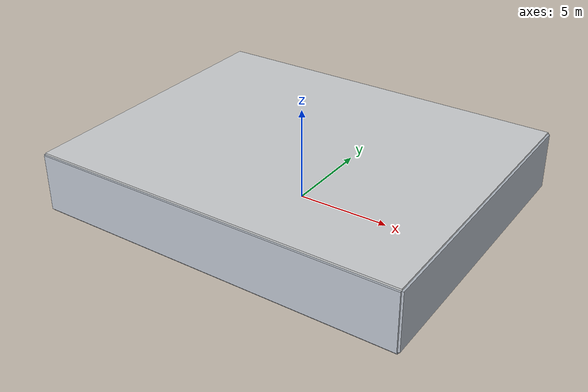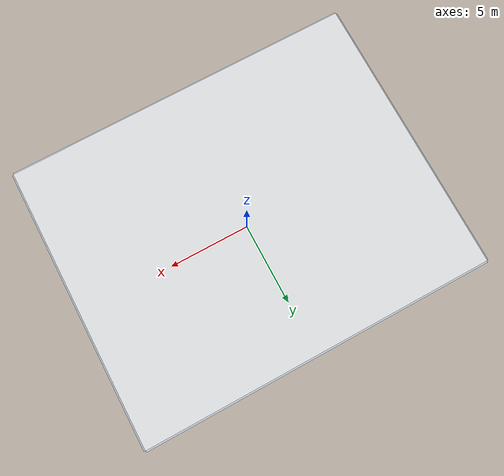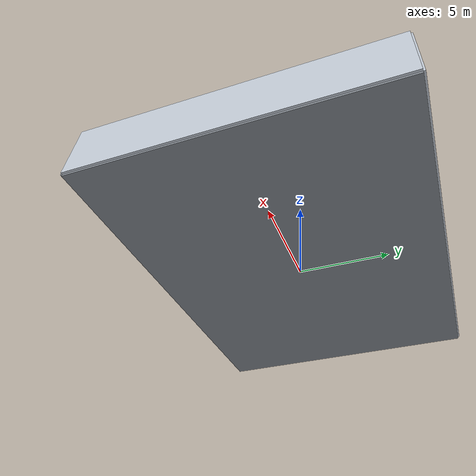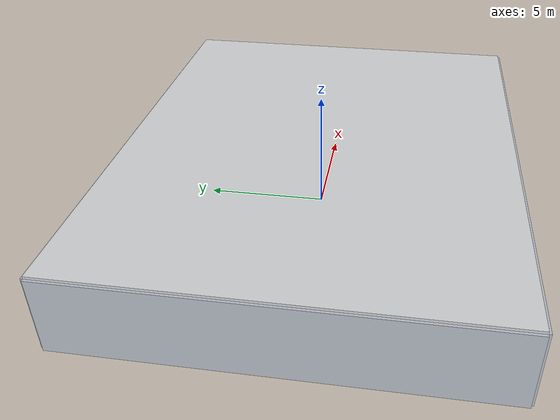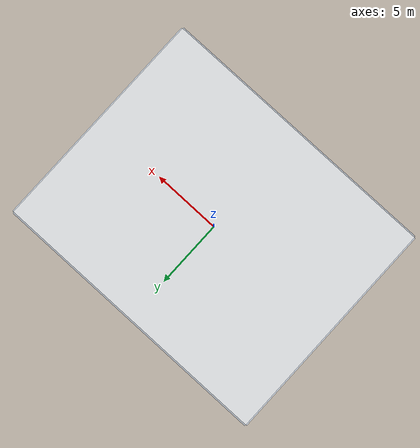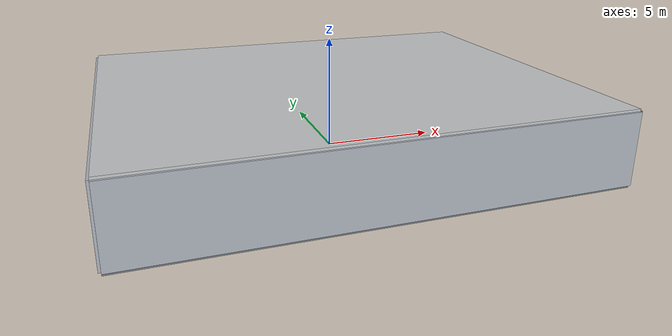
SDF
<?xml version="1.0"?>
<sdf version="1.10">
  <model name="xq_p5_replay_shell">
    <static>true</static>
    <link name="xq_shell_link">
      <visual name="xq_floor_visual">
        <pose>0 0 -0.06 0 0 0</pose>
        <geometry><box><size>20 16 0.12</size></box></geometry>
        <material><ambient>0.38 0.40 0.43 1</ambient><diffuse>0.48 0.50 0.53 1</diffuse></material>
      </visual>
      <visual name="xq_wall_west_visual">
        <pose>-10 0 1.55 0 0 0</pose>
        <geometry><box><size>0.20 16 3.10</size></box></geometry>
        <material><ambient>0.62 0.65 0.69 1</ambient><diffuse>0.72 0.75 0.79 1</diffuse></material>
      </visual>
      <visual name="xq_wall_east_visual">
        <pose>10 0 1.55 0 0 0</pose>
        <geometry><box><size>0.20 16 3.10</size></box></geometry>
        <material><ambient>0.62 0.65 0.69 1</ambient><diffuse>0.72 0.75 0.79 1</diffuse></material>
      </visual>
      <visual name="xq_wall_south_visual">
        <pose>0 -8 1.55 0 0 0</pose>
        <geometry><box><size>20 0.20 3.10</size></box></geometry>
        <material><ambient>0.62 0.65 0.69 1</ambient><diffuse>0.72 0.75 0.79 1</diffuse></material>
      </visual>
      <visual name="xq_wall_north_visual">
        <pose>0 8 1.55 0 0 0</pose>
        <geometry><box><size>20 0.20 3.10</size></box></geometry>
        <material><ambient>0.62 0.65 0.69 1</ambient><diffuse>0.72 0.75 0.79 1</diffuse></material>
      </visual>
      <visual name="xq_core_west_visual">
        <pose>-3.0 0 1.55 0 0 0</pose>
        <geometry><box><size>0.18 4.4 3.10</size></box></geometry>
        <material><ambient>0.27 0.36 0.43 1</ambient><diffuse>0.34 0.46 0.55 1</diffuse></material>
      </visual>
      <visual name="xq_core_east_visual">
        <pose>3.0 0 1.55 0 0 0</pose>
        <geometry><box><size>0.18 4.4 3.10</size></box></geometry>
        <material><ambient>0.27 0.36 0.43 1</ambient><diffuse>0.34 0.46 0.55 1</diffuse></material>
      </visual>
      <visual name="xq_core_south_visual">
        <pose>0 -2.2 1.55 0 0 0</pose>
        <geometry><box><size>6.18 0.18 3.10</size></box></geometry>
        <material><ambient>0.27 0.36 0.43 1</ambient><diffuse>0.34 0.46 0.55 1</diffuse></material>
      </visual>
      <visual name="xq_core_north_visual">
        <pose>0 2.2 1.55 0 0 0</pose>
        <geometry><box><size>6.18 0.18 3.10</size></box></geometry>
        <material><ambient>0.27 0.36 0.43 1</ambient><diffuse>0.34 0.46 0.55 1</diffuse></material>
      </visual>
      <visual name="xq_partition_nw_visual">
        <pose>-6.7 3.9 1.30 0 0 0</pose>
        <geometry><box><size>4.8 0.16 2.60</size></box></geometry>
        <material><ambient>0.61 0.54 0.39 1</ambient><diffuse>0.72 0.65 0.49 1</diffuse></material>
      </visual>
      <visual name="xq_partition_ne_visual">
        <pose>6.8 4.7 1.30 0 0 0</pose>
        <geometry><box><size>0.16 5.2 2.60</size></box></geometry>
        <material><ambient>0.48 0.57 0.43 1</ambient><diffuse>0.58 0.68 0.53 1</diffuse></material>
      </visual>
      <visual name="xq_partition_sw_visual">
        <pose>-5.8 -4.8 1.30 0 0 0</pose>
        <geometry><box><size>0.16 3.8 2.60</size></box></geometry>
        <material><ambient>0.50 0.42 0.52 1</ambient><diffuse>0.61 0.52 0.63 1</diffuse></material>
      </visual>
      <visual name="xq_partition_se_visual">
        <pose>6.6 -4.5 1.30 0 0 0</pose>
        <geometry><box><size>5.0 0.16 2.60</size></box></geometry>
        <material><ambient>0.47 0.49 0.60 1</ambient><diffuse>0.57 0.59 0.71 1</diffuse></material>
      </visual>
    </link>
    <link name="xq_ceiling_link">
      <visual name="xq_ceiling_visual">
        <pose>0 0 3.15 0 0 0</pose>
        <geometry><box><size>20 16 0.10</size></box></geometry>
        <material><ambient>0.72 0.73 0.74 1</ambient><diffuse>0.82 0.83 0.84 1</diffuse></material>
      </visual>
    </link>
  </model>
</sdf>
